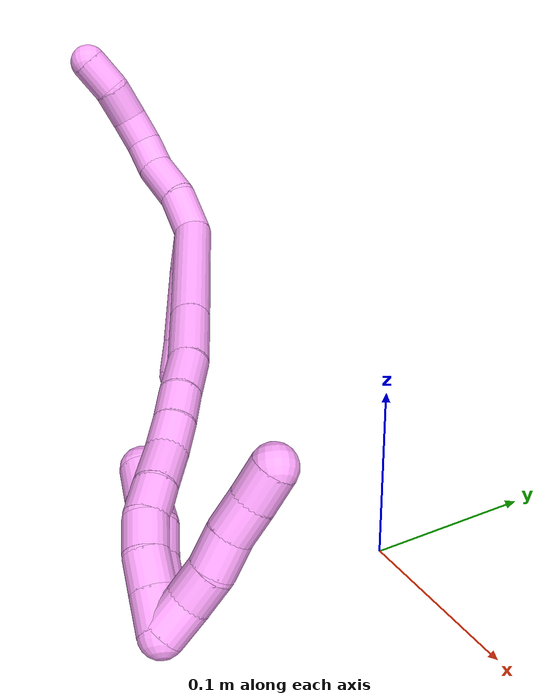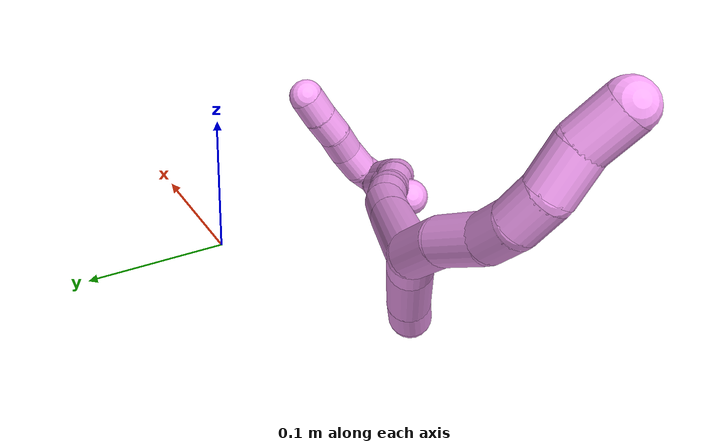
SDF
<sdf version="1.7">
 <world name="default">
  <model name="4">
   <static>0</static>
   <link name="4">
    <collision name="collision-cylinder-e_1_2_8">
     <pose>0.000959 -0.004713 0.01437 0.316935 0.063328 0.010124</pose>
     <geometry><cylinder><radius>0.0125</radius><length>0.030307</length></cylinder></geometry>
     <surface>
      <friction><ode><mu>1.16</mu><mu2>1.16</mu2><slip1>0</slip1><slip2>0</slip2></ode></friction>
      <contact><ode><kp>1e+06</kp><kd>1</kd><max_vel>0</max_vel><min_depth>0.001</min_depth></ode></contact>
     </surface>
    </collision>
    <visual name="visual-cylinder-e_1_2_8">
     <pose>0.000959 -0.004713 0.01437 0.316935 0.063328 0.010124</pose>
     <geometry><cylinder><radius>0.0125</radius><length>0.030307</length></cylinder></geometry>
     <material><ambient>1 0.65098 0.996078 1</ambient></material>
    </visual>
    <collision name="collision-cylinder-e_2_8_9">
     <pose>-0.000323 -0.016083 0.041964 0.466335 -0.150254 -0.035747</pose>
     <geometry><cylinder><radius>0.0125</radius><length>0.029948</length></cylinder></geometry>
     <surface>
      <friction><ode><mu>1.16</mu><mu2>1.16</mu2><slip1>0</slip1><slip2>0</slip2></ode></friction>
      <contact><ode><kp>1e+06</kp><kd>1</kd><max_vel>0</max_vel><min_depth>0.001</min_depth></ode></contact>
     </surface>
    </collision>
    <visual name="visual-cylinder-e_2_8_9">
     <pose>-0.000323 -0.016083 0.041964 0.466335 -0.150254 -0.035747</pose>
     <geometry><cylinder><radius>0.0125</radius><length>0.029948</length></cylinder></geometry>
     <material><ambient>1 0.65098 0.996078 1</ambient></material>
    </visual>
    <collision name="collision-cylinder-e_3_9_10">
     <pose>-0.001166 -0.02679 0.064724 0.401665 0.134226 0.027365</pose>
     <geometry><cylinder><radius>0.0125</radius><length>0.02091</length></cylinder></geometry>
     <surface>
      <friction><ode><mu>1.16</mu><mu2>1.16</mu2><slip1>0</slip1><slip2>0</slip2></ode></friction>
      <contact><ode><kp>1e+06</kp><kd>1</kd><max_vel>0</max_vel><min_depth>0.001</min_depth></ode></contact>
     </surface>
    </collision>
    <visual name="visual-cylinder-e_3_9_10">
     <pose>-0.001166 -0.02679 0.064724 0.401665 0.134226 0.027365</pose>
     <geometry><cylinder><radius>0.0125</radius><length>0.02091</length></cylinder></geometry>
     <material><ambient>1 0.65098 0.996078 1</ambient></material>
    </visual>
    <collision name="collision-cylinder-e_4_10_11">
     <pose>0.004167 -0.036567 0.08206 0.633314 0.386154 0.127957</pose>
     <geometry><cylinder><radius>0.0125</radius><length>0.020891</length></cylinder></geometry>
     <surface>
      <friction><ode><mu>1.16</mu><mu2>1.16</mu2><slip1>0</slip1><slip2>0</slip2></ode></friction>
      <contact><ode><kp>1e+06</kp><kd>1</kd><max_vel>0</max_vel><min_depth>0.001</min_depth></ode></contact>
     </surface>
    </collision>
    <visual name="visual-cylinder-e_4_10_11">
     <pose>0.004167 -0.036567 0.08206 0.633314 0.386154 0.127957</pose>
     <geometry><cylinder><radius>0.0125</radius><length>0.020891</length></cylinder></geometry>
     <material><ambient>1 0.65098 0.996078 1</ambient></material>
    </visual>
    <collision name="collision-cylinder-e_5_11_12">
     <pose>0.015392 -0.049454 0.095997 0.862197 0.658083 0.31156</pose>
     <geometry><cylinder><radius>0.0125</radius><length>0.023839</length></cylinder></geometry>
     <surface>
      <friction><ode><mu>1.16</mu><mu2>1.16</mu2><slip1>0</slip1><slip2>0</slip2></ode></friction>
      <contact><ode><kp>1e+06</kp><kd>1</kd><max_vel>0</max_vel><min_depth>0.001</min_depth></ode></contact>
     </surface>
    </collision>
    <visual name="visual-cylinder-e_5_11_12">
     <pose>0.015392 -0.049454 0.095997 0.862197 0.658083 0.31156</pose>
     <geometry><cylinder><radius>0.0125</radius><length>0.023839</length></cylinder></geometry>
     <material><ambient>1 0.65098 0.996078 1</ambient></material>
    </visual>
    <collision name="collision-cylinder-e_6_12_6">
     <pose>0.027194 -0.06521 0.109278 0.877335 0.383719 0.181763</pose>
     <geometry><cylinder><radius>0.0125</radius><length>0.024106</length></cylinder></geometry>
     <surface>
      <friction><ode><mu>1.16</mu><mu2>1.16</mu2><slip1>0</slip1><slip2>0</slip2></ode></friction>
      <contact><ode><kp>1e+06</kp><kd>1</kd><max_vel>0</max_vel><min_depth>0.001</min_depth></ode></contact>
     </surface>
    </collision>
    <visual name="visual-cylinder-e_6_12_6">
     <pose>0.027194 -0.06521 0.109278 0.877335 0.383719 0.181763</pose>
     <geometry><cylinder><radius>0.0125</radius><length>0.024106</length></cylinder></geometry>
     <material><ambient>1 0.65098 0.996078 1</ambient></material>
    </visual>
    <collision name="collision-cylinder-e_1_2_13">
     <pose>-0.003012 -0.001865 -0.014201 3.01099 -0.207237 -2.01885</pose>
     <geometry><cylinder><radius>0.0125</radius><length>0.029273</length></cylinder></geometry>
     <surface>
      <friction><ode><mu>1.16</mu><mu2>1.16</mu2><slip1>0</slip1><slip2>0</slip2></ode></friction>
      <contact><ode><kp>1e+06</kp><kd>1</kd><max_vel>0</max_vel><min_depth>0.001</min_depth></ode></contact>
     </surface>
    </collision>
    <visual name="visual-cylinder-e_1_2_13">
     <pose>-0.003012 -0.001865 -0.014201 3.01099 -0.207237 -2.01885</pose>
     <geometry><cylinder><radius>0.0125</radius><length>0.029273</length></cylinder></geometry>
     <material><ambient>1 0.65098 0.996078 1</ambient></material>
    </visual>
    <collision name="collision-cylinder-e_2_13_14">
     <pose>-0.014968 -0.005377 -0.051044 3.069 -0.375338 -2.76372</pose>
     <geometry><cylinder><radius>0.0125</radius><length>0.048801</length></cylinder></geometry>
     <surface>
      <friction><ode><mu>1.16</mu><mu2>1.16</mu2><slip1>0</slip1><slip2>0</slip2></ode></friction>
      <contact><ode><kp>1e+06</kp><kd>1</kd><max_vel>0</max_vel><min_depth>0.001</min_depth></ode></contact>
     </surface>
    </collision>
    <visual name="visual-cylinder-e_2_13_14">
     <pose>-0.014968 -0.005377 -0.051044 3.069 -0.375338 -2.76372</pose>
     <geometry><cylinder><radius>0.0125</radius><length>0.048801</length></cylinder></geometry>
     <material><ambient>1 0.65098 0.996078 1</ambient></material>
    </visual>
    <collision name="collision-cylinder-e_3_14_5">
     <pose>-0.028542 -0.008172 -0.083558 3.02585 -0.435961 -2.62993</pose>
     <geometry><cylinder><radius>0.0125</radius><length>0.021926</length></cylinder></geometry>
     <surface>
      <friction><ode><mu>1.16</mu><mu2>1.16</mu2><slip1>0</slip1><slip2>0</slip2></ode></friction>
      <contact><ode><kp>1e+06</kp><kd>1</kd><max_vel>0</max_vel><min_depth>0.001</min_depth></ode></contact>
     </surface>
    </collision>
    <visual name="visual-cylinder-e_3_14_5">
     <pose>-0.028542 -0.008172 -0.083558 3.02585 -0.435961 -2.62993</pose>
     <geometry><cylinder><radius>0.0125</radius><length>0.021926</length></cylinder></geometry>
     <material><ambient>1 0.65098 0.996078 1</ambient></material>
    </visual>
    <collision name="collision-cylinder-e_1_2_15">
     <pose>0.012375 -0.006386 -0.041032 2.9872 0.289624 2.16624</pose>
     <geometry><cylinder><radius>0.0125</radius><length>0.086661</length></cylinder></geometry>
     <surface>
      <friction><ode><mu>1.16</mu><mu2>1.16</mu2><slip1>0</slip1><slip2>0</slip2></ode></friction>
      <contact><ode><kp>1e+06</kp><kd>1</kd><max_vel>0</max_vel><min_depth>0.001</min_depth></ode></contact>
     </surface>
    </collision>
    <visual name="visual-cylinder-e_1_2_15">
     <pose>0.012375 -0.006386 -0.041032 2.9872 0.289624 2.16624</pose>
     <geometry><cylinder><radius>0.0125</radius><length>0.086661</length></cylinder></geometry>
     <material><ambient>1 0.65098 0.996078 1</ambient></material>
    </visual>
    <collision name="collision-cylinder-e_2_15_16">
     <pose>0.03092 -0.015933 -0.100809 2.97452 0.313839 2.16814</pose>
     <geometry><cylinder><radius>0.0125</radius><length>0.039974</length></cylinder></geometry>
     <surface>
      <friction><ode><mu>1.16</mu><mu2>1.16</mu2><slip1>0</slip1><slip2>0</slip2></ode></friction>
      <contact><ode><kp>1e+06</kp><kd>1</kd><max_vel>0</max_vel><min_depth>0.001</min_depth></ode></contact>
     </surface>
    </collision>
    <visual name="visual-cylinder-e_2_15_16">
     <pose>0.03092 -0.015933 -0.100809 2.97452 0.313839 2.16814</pose>
     <geometry><cylinder><radius>0.0125</radius><length>0.039974</length></cylinder></geometry>
     <material><ambient>1 0.65098 0.996078 1</ambient></material>
    </visual>
    <collision name="collision-cylinder-e_3_16_17">
     <pose>0.040603 -0.023032 -0.131626 2.82627 0.269955 1.41387</pose>
     <geometry><cylinder><radius>0.0125</radius><length>0.026347</length></cylinder></geometry>
     <surface>
      <friction><ode><mu>1.16</mu><mu2>1.16</mu2><slip1>0</slip1><slip2>0</slip2></ode></friction>
      <contact><ode><kp>1e+06</kp><kd>1</kd><max_vel>0</max_vel><min_depth>0.001</min_depth></ode></contact>
     </surface>
    </collision>
    <visual name="visual-cylinder-e_3_16_17">
     <pose>0.040603 -0.023032 -0.131626 2.82627 0.269955 1.41387</pose>
     <geometry><cylinder><radius>0.0125</radius><length>0.026347</length></cylinder></geometry>
     <material><ambient>1 0.65098 0.996078 1</ambient></material>
    </visual>
    <collision name="collision-cylinder-e_4_17_18">
     <pose>0.046103 -0.029669 -0.153622 2.87599 0.190791 1.24312</pose>
     <geometry><cylinder><radius>0.0125</radius><length>0.020953</length></cylinder></geometry>
     <surface>
      <friction><ode><mu>1.16</mu><mu2>1.16</mu2><slip1>0</slip1><slip2>0</slip2></ode></friction>
      <contact><ode><kp>1e+06</kp><kd>1</kd><max_vel>0</max_vel><min_depth>0.001</min_depth></ode></contact>
     </surface>
    </collision>
    <visual name="visual-cylinder-e_4_17_18">
     <pose>0.046103 -0.029669 -0.153622 2.87599 0.190791 1.24312</pose>
     <geometry><cylinder><radius>0.0125</radius><length>0.020953</length></cylinder></geometry>
     <material><ambient>1 0.65098 0.996078 1</ambient></material>
    </visual>
    <collision name="collision-cylinder-e_5_18_19">
     <pose>0.049275 -0.035504 -0.173346 2.83197 0.114707 0.705081</pose>
     <geometry><cylinder><radius>0.0125</radius><length>0.020713</length></cylinder></geometry>
     <surface>
      <friction><ode><mu>1.16</mu><mu2>1.16</mu2><slip1>0</slip1><slip2>0</slip2></ode></friction>
      <contact><ode><kp>1e+06</kp><kd>1</kd><max_vel>0</max_vel><min_depth>0.001</min_depth></ode></contact>
     </surface>
    </collision>
    <visual name="visual-cylinder-e_5_18_19">
     <pose>0.049275 -0.035504 -0.173346 2.83197 0.114707 0.705081</pose>
     <geometry><cylinder><radius>0.0125</radius><length>0.020713</length></cylinder></geometry>
     <material><ambient>1 0.65098 0.996078 1</ambient></material>
    </visual>
    <collision name="collision-cylinder-e_6_19_20">
     <pose>0.054 -0.042892 -0.193895 2.76483 0.297087 1.33099</pose>
     <geometry><cylinder><radius>0.0125</radius><length>0.02418</length></cylinder></geometry>
     <surface>
      <friction><ode><mu>1.16</mu><mu2>1.16</mu2><slip1>0</slip1><slip2>0</slip2></ode></friction>
      <contact><ode><kp>1e+06</kp><kd>1</kd><max_vel>0</max_vel><min_depth>0.001</min_depth></ode></contact>
     </surface>
    </collision>
    <visual name="visual-cylinder-e_6_19_20">
     <pose>0.054 -0.042892 -0.193895 2.76483 0.297087 1.33099</pose>
     <geometry><cylinder><radius>0.0125</radius><length>0.02418</length></cylinder></geometry>
     <material><ambient>1 0.65098 0.996078 1</ambient></material>
    </visual>
    <collision name="collision-cylinder-e_7_20_21">
     <pose>0.059352 -0.050463 -0.213958 2.7994 0.181359 0.968847</pose>
     <geometry><cylinder><radius>0.0125</radius><length>0.020104</length></cylinder></geometry>
     <surface>
      <friction><ode><mu>1.16</mu><mu2>1.16</mu2><slip1>0</slip1><slip2>0</slip2></ode></friction>
      <contact><ode><kp>1e+06</kp><kd>1</kd><max_vel>0</max_vel><min_depth>0.001</min_depth></ode></contact>
     </surface>
    </collision>
    <visual name="visual-cylinder-e_7_20_21">
     <pose>0.059352 -0.050463 -0.213958 2.7994 0.181359 0.968847</pose>
     <geometry><cylinder><radius>0.0125</radius><length>0.020104</length></cylinder></geometry>
     <material><ambient>1 0.65098 0.996078 1</ambient></material>
    </visual>
    <collision name="collision-cylinder-e_8_21_22">
     <pose>0.062688 -0.05437 -0.233158 3.08212 0.152642 2.39966</pose>
     <geometry><cylinder><radius>0.0125</radius><length>0.020041</length></cylinder></geometry>
     <surface>
      <friction><ode><mu>1.16</mu><mu2>1.16</mu2><slip1>0</slip1><slip2>0</slip2></ode></friction>
      <contact><ode><kp>1e+06</kp><kd>1</kd><max_vel>0</max_vel><min_depth>0.001</min_depth></ode></contact>
     </surface>
    </collision>
    <visual name="visual-cylinder-e_8_21_22">
     <pose>0.062688 -0.05437 -0.233158 3.08212 0.152642 2.39966</pose>
     <geometry><cylinder><radius>0.0125</radius><length>0.020041</length></cylinder></geometry>
     <material><ambient>1 0.65098 0.996078 1</ambient></material>
    </visual>
    <collision name="collision-cylinder-e_9_22_23">
     <pose>0.065373 -0.053734 -0.252981 -3.01904 0.115434 -1.51088</pose>
     <geometry><cylinder><radius>0.0125</radius><length>0.020157</length></cylinder></geometry>
     <surface>
      <friction><ode><mu>1.16</mu><mu2>1.16</mu2><slip1>0</slip1><slip2>0</slip2></ode></friction>
      <contact><ode><kp>1e+06</kp><kd>1</kd><max_vel>0</max_vel><min_depth>0.001</min_depth></ode></contact>
     </surface>
    </collision>
    <visual name="visual-cylinder-e_9_22_23">
     <pose>0.065373 -0.053734 -0.252981 -3.01904 0.115434 -1.51088</pose>
     <geometry><cylinder><radius>0.0125</radius><length>0.020157</length></cylinder></geometry>
     <material><ambient>1 0.65098 0.996078 1</ambient></material>
    </visual>
    <collision name="collision-cylinder-e_10_23_1">
     <pose>0.067784 -0.051226 -0.273198 -3.01724 0.120128 -1.53616</pose>
     <geometry><cylinder><radius>0.0125</radius><length>0.020872</length></cylinder></geometry>
     <surface>
      <friction><ode><mu>1.16</mu><mu2>1.16</mu2><slip1>0</slip1><slip2>0</slip2></ode></friction>
      <contact><ode><kp>1e+06</kp><kd>1</kd><max_vel>0</max_vel><min_depth>0.001</min_depth></ode></contact>
     </surface>
    </collision>
    <visual name="visual-cylinder-e_10_23_1">
     <pose>0.067784 -0.051226 -0.273198 -3.01724 0.120128 -1.53616</pose>
     <geometry><cylinder><radius>0.0125</radius><length>0.020872</length></cylinder></geometry>
     <material><ambient>1 0.65098 0.996078 1</ambient></material>
    </visual>
    <collision name="collision-cylinder-e_1_1_24">
     <pose>0.065599 -0.048853 -0.27415 -0.116086 -0.35069 0.020589</pose>
     <geometry><cylinder><radius>0.0125</radius><length>0.02</length></cylinder></geometry>
     <surface>
      <friction><ode><mu>1.16</mu><mu2>1.16</mu2><slip1>0</slip1><slip2>0</slip2></ode></friction>
      <contact><ode><kp>1e+06</kp><kd>1</kd><max_vel>0</max_vel><min_depth>0.001</min_depth></ode></contact>
     </surface>
    </collision>
    <visual name="visual-cylinder-e_1_1_24">
     <pose>0.065599 -0.048853 -0.27415 -0.116086 -0.35069 0.020589</pose>
     <geometry><cylinder><radius>0.0125</radius><length>0.02</length></cylinder></geometry>
     <material><ambient>1 0.65098 0.996078 1</ambient></material>
    </visual>
    <collision name="collision-cylinder-e_2_24_25">
     <pose>0.060703 -0.048608 -0.254966 0.085371 -0.14667 -0.006276</pose>
     <geometry><cylinder><radius>0.0125</radius><length>0.02</length></cylinder></geometry>
     <surface>
      <friction><ode><mu>1.16</mu><mu2>1.16</mu2><slip1>0</slip1><slip2>0</slip2></ode></friction>
      <contact><ode><kp>1e+06</kp><kd>1</kd><max_vel>0</max_vel><min_depth>0.001</min_depth></ode></contact>
     </surface>
    </collision>
    <visual name="visual-cylinder-e_2_24_25">
     <pose>0.060703 -0.048608 -0.254966 0.085371 -0.14667 -0.006276</pose>
     <geometry><cylinder><radius>0.0125</radius><length>0.02</length></cylinder></geometry>
     <material><ambient>1 0.65098 0.996078 1</ambient></material>
    </visual>
    <collision name="collision-cylinder-e_3_25_26">
     <pose>0.056861 -0.048392 -0.235455 -0.109387 -0.240295 0.013219</pose>
     <geometry><cylinder><radius>0.0125</radius><length>0.02</length></cylinder></geometry>
     <surface>
      <friction><ode><mu>1.16</mu><mu2>1.16</mu2><slip1>0</slip1><slip2>0</slip2></ode></friction>
      <contact><ode><kp>1e+06</kp><kd>1</kd><max_vel>0</max_vel><min_depth>0.001</min_depth></ode></contact>
     </surface>
    </collision>
    <visual name="visual-cylinder-e_3_25_26">
     <pose>0.056861 -0.048392 -0.235455 -0.109387 -0.240295 0.013219</pose>
     <geometry><cylinder><radius>0.0125</radius><length>0.02</length></cylinder></geometry>
     <material><ambient>1 0.65098 0.996078 1</ambient></material>
    </visual>
    <collision name="collision-cylinder-e_4_26_27">
     <pose>0.050417 -0.048281 -0.216712 0.104089 -0.418507 -0.022124</pose>
     <geometry><cylinder><radius>0.0125</radius><length>0.02</length></cylinder></geometry>
     <surface>
      <friction><ode><mu>1.16</mu><mu2>1.16</mu2><slip1>0</slip1><slip2>0</slip2></ode></friction>
      <contact><ode><kp>1e+06</kp><kd>1</kd><max_vel>0</max_vel><min_depth>0.001</min_depth></ode></contact>
     </surface>
    </collision>
    <visual name="visual-cylinder-e_4_26_27">
     <pose>0.050417 -0.048281 -0.216712 0.104089 -0.418507 -0.022124</pose>
     <geometry><cylinder><radius>0.0125</radius><length>0.02</length></cylinder></geometry>
     <material><ambient>1 0.65098 0.996078 1</ambient></material>
    </visual>
    <collision name="collision-cylinder-e_5_27_4">
     <pose>0.043739 -0.049906 -0.197996 0.070066 -0.264542 -0.009326</pose>
     <geometry><cylinder><radius>0.0125</radius><length>0.02</length></cylinder></geometry>
     <surface>
      <friction><ode><mu>1.16</mu><mu2>1.16</mu2><slip1>0</slip1><slip2>0</slip2></ode></friction>
      <contact><ode><kp>1e+06</kp><kd>1</kd><max_vel>0</max_vel><min_depth>0.001</min_depth></ode></contact>
     </surface>
    </collision>
    <visual name="visual-cylinder-e_5_27_4">
     <pose>0.043739 -0.049906 -0.197996 0.070066 -0.264542 -0.009326</pose>
     <geometry><cylinder><radius>0.0125</radius><length>0.02</length></cylinder></geometry>
     <material><ambient>1 0.65098 0.996078 1</ambient></material>
    </visual>
    <collision name="collision-cylinder-e_1_1_28">
     <pose>0.073934 -0.04396 -0.277135 -0.755981 0.511926 -0.207094</pose>
     <geometry><cylinder><radius>0.0125</radius><length>0.02</length></cylinder></geometry>
     <surface>
      <friction><ode><mu>1.16</mu><mu2>1.16</mu2><slip1>0</slip1><slip2>0</slip2></ode></friction>
      <contact><ode><kp>1e+06</kp><kd>1</kd><max_vel>0</max_vel><min_depth>0.001</min_depth></ode></contact>
     </surface>
    </collision>
    <visual name="visual-cylinder-e_1_1_28">
     <pose>0.073934 -0.04396 -0.277135 -0.755981 0.511926 -0.207094</pose>
     <geometry><cylinder><radius>0.0125</radius><length>0.02</length></cylinder></geometry>
     <material><ambient>1 0.65098 0.996078 1</ambient></material>
    </visual>
    <collision name="collision-cylinder-e_2_28_29">
     <pose>0.08598 -0.033447 -0.265466 -0.705017 0.796344 -0.30705</pose>
     <geometry><cylinder><radius>0.0125</radius><length>0.02</length></cylinder></geometry>
     <surface>
      <friction><ode><mu>1.16</mu><mu2>1.16</mu2><slip1>0</slip1><slip2>0</slip2></ode></friction>
      <contact><ode><kp>1e+06</kp><kd>1</kd><max_vel>0</max_vel><min_depth>0.001</min_depth></ode></contact>
     </surface>
    </collision>
    <visual name="visual-cylinder-e_2_28_29">
     <pose>0.08598 -0.033447 -0.265466 -0.705017 0.796344 -0.30705</pose>
     <geometry><cylinder><radius>0.0125</radius><length>0.02</length></cylinder></geometry>
     <material><ambient>1 0.65098 0.996078 1</ambient></material>
    </visual>
    <collision name="collision-cylinder-e_3_29_30">
     <pose>0.099386 -0.025364 -0.253196 -0.47276 0.676187 -0.168983</pose>
     <geometry><cylinder><radius>0.0125</radius><length>0.02</length></cylinder></geometry>
     <surface>
      <friction><ode><mu>1.16</mu><mu2>1.16</mu2><slip1>0</slip1><slip2>0</slip2></ode></friction>
      <contact><ode><kp>1e+06</kp><kd>1</kd><max_vel>0</max_vel><min_depth>0.001</min_depth></ode></contact>
     </surface>
    </collision>
    <visual name="visual-cylinder-e_3_29_30">
     <pose>0.099386 -0.025364 -0.253196 -0.47276 0.676187 -0.168983</pose>
     <geometry><cylinder><radius>0.0125</radius><length>0.02</length></cylinder></geometry>
     <material><ambient>1 0.65098 0.996078 1</ambient></material>
    </visual>
    <collision name="collision-cylinder-e_4_30_31">
     <pose>0.112563 -0.017435 -0.24051 -0.651341 0.764043 -0.269697</pose>
     <geometry><cylinder><radius>0.0125</radius><length>0.02</length></cylinder></geometry>
     <surface>
      <friction><ode><mu>1.16</mu><mu2>1.16</mu2><slip1>0</slip1><slip2>0</slip2></ode></friction>
      <contact><ode><kp>1e+06</kp><kd>1</kd><max_vel>0</max_vel><min_depth>0.001</min_depth></ode></contact>
     </surface>
    </collision>
    <visual name="visual-cylinder-e_4_30_31">
     <pose>0.112563 -0.017435 -0.24051 -0.651341 0.764043 -0.269697</pose>
     <geometry><cylinder><radius>0.0125</radius><length>0.02</length></cylinder></geometry>
     <material><ambient>1 0.65098 0.996078 1</ambient></material>
    </visual>
    <collision name="collision-cylinder-e_5_31_3">
     <pose>0.126823 -0.009226 -0.229162 -0.599607 0.824375 -0.268689</pose>
     <geometry><cylinder><radius>0.0125</radius><length>0.02</length></cylinder></geometry>
     <surface>
      <friction><ode><mu>1.16</mu><mu2>1.16</mu2><slip1>0</slip1><slip2>0</slip2></ode></friction>
      <contact><ode><kp>1e+06</kp><kd>1</kd><max_vel>0</max_vel><min_depth>0.001</min_depth></ode></contact>
     </surface>
    </collision>
    <visual name="visual-cylinder-e_5_31_3">
     <pose>0.126823 -0.009226 -0.229162 -0.599607 0.824375 -0.268689</pose>
     <geometry><cylinder><radius>0.0125</radius><length>0.02</length></cylinder></geometry>
     <material><ambient>1 0.65098 0.996078 1</ambient></material>
    </visual>
    <collision name="collision-sphere-3">
     <pose>0.134164 -0.005394 -0.223556 0 -0 0</pose>
     <geometry><sphere><radius>0.0125</radius></sphere></geometry>
     <surface>
      <friction><ode><mu>1.16</mu><mu2>1.16</mu2><slip1>0</slip1><slip2>0</slip2></ode></friction>
      <contact><ode><kp>1e+06</kp><kd>1</kd><max_vel>0</max_vel><min_depth>0.001</min_depth></ode></contact>
     </surface>
    </collision>
    <visual name="visual-sphere-3">
     <pose>0.134164 -0.005394 -0.223556 0 -0 0</pose>
     <geometry><sphere><radius>0.0125</radius></sphere></geometry>
     <material><ambient>1 0.65098 0.996078 1</ambient></material>
    </visual>
    <collision name="collision-sphere-31">
     <pose>0.119482 -0.013057 -0.234767 0 -0 0</pose>
     <geometry><sphere><radius>0.0125</radius></sphere></geometry>
     <surface>
      <friction><ode><mu>1.16</mu><mu2>1.16</mu2><slip1>0</slip1><slip2>0</slip2></ode></friction>
      <contact><ode><kp>1e+06</kp><kd>1</kd><max_vel>0</max_vel><min_depth>0.001</min_depth></ode></contact>
     </surface>
    </collision>
    <visual name="visual-sphere-31">
     <pose>0.119482 -0.013057 -0.234767 0 -0 0</pose>
     <geometry><sphere><radius>0.0125</radius></sphere></geometry>
     <material><ambient>1 0.65098 0.996078 1</ambient></material>
    </visual>
    <collision name="collision-sphere-30">
     <pose>0.105645 -0.021812 -0.246252 0 -0 0</pose>
     <geometry><sphere><radius>0.0125</radius></sphere></geometry>
     <surface>
      <friction><ode><mu>1.16</mu><mu2>1.16</mu2><slip1>0</slip1><slip2>0</slip2></ode></friction>
      <contact><ode><kp>1e+06</kp><kd>1</kd><max_vel>0</max_vel><min_depth>0.001</min_depth></ode></contact>
     </surface>
    </collision>
    <visual name="visual-sphere-30">
     <pose>0.105645 -0.021812 -0.246252 0 -0 0</pose>
     <geometry><sphere><radius>0.0125</radius></sphere></geometry>
     <material><ambient>1 0.65098 0.996078 1</ambient></material>
    </visual>
    <collision name="collision-sphere-29">
     <pose>0.093128 -0.028915 -0.26014 0 -0 0</pose>
     <geometry><sphere><radius>0.0125</radius></sphere></geometry>
     <surface>
      <friction><ode><mu>1.16</mu><mu2>1.16</mu2><slip1>0</slip1><slip2>0</slip2></ode></friction>
      <contact><ode><kp>1e+06</kp><kd>1</kd><max_vel>0</max_vel><min_depth>0.001</min_depth></ode></contact>
     </surface>
    </collision>
    <visual name="visual-sphere-29">
     <pose>0.093128 -0.028915 -0.26014 0 -0 0</pose>
     <geometry><sphere><radius>0.0125</radius></sphere></geometry>
     <material><ambient>1 0.65098 0.996078 1</ambient></material>
    </visual>
    <collision name="collision-sphere-28">
     <pose>0.078832 -0.037979 -0.270792 0 -0 0</pose>
     <geometry><sphere><radius>0.0125</radius></sphere></geometry>
     <surface>
      <friction><ode><mu>1.16</mu><mu2>1.16</mu2><slip1>0</slip1><slip2>0</slip2></ode></friction>
      <contact><ode><kp>1e+06</kp><kd>1</kd><max_vel>0</max_vel><min_depth>0.001</min_depth></ode></contact>
     </surface>
    </collision>
    <visual name="visual-sphere-28">
     <pose>0.078832 -0.037979 -0.270792 0 -0 0</pose>
     <geometry><sphere><radius>0.0125</radius></sphere></geometry>
     <material><ambient>1 0.65098 0.996078 1</ambient></material>
    </visual>
    <collision name="collision-sphere-4">
     <pose>0.041124 -0.050581 -0.188368 0 -0 0</pose>
     <geometry><sphere><radius>0.0125</radius></sphere></geometry>
     <surface>
      <friction><ode><mu>1.16</mu><mu2>1.16</mu2><slip1>0</slip1><slip2>0</slip2></ode></friction>
      <contact><ode><kp>1e+06</kp><kd>1</kd><max_vel>0</max_vel><min_depth>0.001</min_depth></ode></contact>
     </surface>
    </collision>
    <visual name="visual-sphere-4">
     <pose>0.041124 -0.050581 -0.188368 0 -0 0</pose>
     <geometry><sphere><radius>0.0125</radius></sphere></geometry>
     <material><ambient>1 0.65098 0.996078 1</ambient></material>
    </visual>
    <collision name="collision-sphere-27">
     <pose>0.046353 -0.04923 -0.207625 0 -0 0</pose>
     <geometry><sphere><radius>0.0125</radius></sphere></geometry>
     <surface>
      <friction><ode><mu>1.16</mu><mu2>1.16</mu2><slip1>0</slip1><slip2>0</slip2></ode></friction>
      <contact><ode><kp>1e+06</kp><kd>1</kd><max_vel>0</max_vel><min_depth>0.001</min_depth></ode></contact>
     </surface>
    </collision>
    <visual name="visual-sphere-27">
     <pose>0.046353 -0.04923 -0.207625 0 -0 0</pose>
     <geometry><sphere><radius>0.0125</radius></sphere></geometry>
     <material><ambient>1 0.65098 0.996078 1</ambient></material>
    </visual>
    <collision name="collision-sphere-26">
     <pose>0.054481 -0.047331 -0.2258 0 -0 0</pose>
     <geometry><sphere><radius>0.0125</radius></sphere></geometry>
     <surface>
      <friction><ode><mu>1.16</mu><mu2>1.16</mu2><slip1>0</slip1><slip2>0</slip2></ode></friction>
      <contact><ode><kp>1e+06</kp><kd>1</kd><max_vel>0</max_vel><min_depth>0.001</min_depth></ode></contact>
     </surface>
    </collision>
    <visual name="visual-sphere-26">
     <pose>0.054481 -0.047331 -0.2258 0 -0 0</pose>
     <geometry><sphere><radius>0.0125</radius></sphere></geometry>
     <material><ambient>1 0.65098 0.996078 1</ambient></material>
    </visual>
    <collision name="collision-sphere-25">
     <pose>0.059241 -0.049452 -0.245109 0 -0 0</pose>
     <geometry><sphere><radius>0.0125</radius></sphere></geometry>
     <surface>
      <friction><ode><mu>1.16</mu><mu2>1.16</mu2><slip1>0</slip1><slip2>0</slip2></ode></friction>
      <contact><ode><kp>1e+06</kp><kd>1</kd><max_vel>0</max_vel><min_depth>0.001</min_depth></ode></contact>
     </surface>
    </collision>
    <visual name="visual-sphere-25">
     <pose>0.059241 -0.049452 -0.245109 0 -0 0</pose>
     <geometry><sphere><radius>0.0125</radius></sphere></geometry>
     <material><ambient>1 0.65098 0.996078 1</ambient></material>
    </visual>
    <collision name="collision-sphere-24">
     <pose>0.062164 -0.047765 -0.264822 0 -0 0</pose>
     <geometry><sphere><radius>0.0125</radius></sphere></geometry>
     <surface>
      <friction><ode><mu>1.16</mu><mu2>1.16</mu2><slip1>0</slip1><slip2>0</slip2></ode></friction>
      <contact><ode><kp>1e+06</kp><kd>1</kd><max_vel>0</max_vel><min_depth>0.001</min_depth></ode></contact>
     </surface>
    </collision>
    <visual name="visual-sphere-24">
     <pose>0.062164 -0.047765 -0.264822 0 -0 0</pose>
     <geometry><sphere><radius>0.0125</radius></sphere></geometry>
     <material><ambient>1 0.65098 0.996078 1</ambient></material>
    </visual>
    <collision name="collision-sphere-1">
     <pose>0.069035 -0.04994 -0.283479 0 -0 0</pose>
     <geometry><sphere><radius>0.0125</radius></sphere></geometry>
     <surface>
      <friction><ode><mu>1.16</mu><mu2>1.16</mu2><slip1>0</slip1><slip2>0</slip2></ode></friction>
      <contact><ode><kp>1e+06</kp><kd>1</kd><max_vel>0</max_vel><min_depth>0.001</min_depth></ode></contact>
     </surface>
    </collision>
    <visual name="visual-sphere-1">
     <pose>0.069035 -0.04994 -0.283479 0 -0 0</pose>
     <geometry><sphere><radius>0.0125</radius></sphere></geometry>
     <material><ambient>1 0.65098 0.996078 1</ambient></material>
    </visual>
    <collision name="collision-sphere-23">
     <pose>0.066534 -0.052511 -0.262917 0 -0 0</pose>
     <geometry><sphere><radius>0.0125</radius></sphere></geometry>
     <surface>
      <friction><ode><mu>1.16</mu><mu2>1.16</mu2><slip1>0</slip1><slip2>0</slip2></ode></friction>
      <contact><ode><kp>1e+06</kp><kd>1</kd><max_vel>0</max_vel><min_depth>0.001</min_depth></ode></contact>
     </surface>
    </collision>
    <visual name="visual-sphere-23">
     <pose>0.066534 -0.052511 -0.262917 0 -0 0</pose>
     <geometry><sphere><radius>0.0125</radius></sphere></geometry>
     <material><ambient>1 0.65098 0.996078 1</ambient></material>
    </visual>
    <collision name="collision-sphere-22">
     <pose>0.064212 -0.054958 -0.243045 0 -0 0</pose>
     <geometry><sphere><radius>0.0125</radius></sphere></geometry>
     <surface>
      <friction><ode><mu>1.16</mu><mu2>1.16</mu2><slip1>0</slip1><slip2>0</slip2></ode></friction>
      <contact><ode><kp>1e+06</kp><kd>1</kd><max_vel>0</max_vel><min_depth>0.001</min_depth></ode></contact>
     </surface>
    </collision>
    <visual name="visual-sphere-22">
     <pose>0.064212 -0.054958 -0.243045 0 -0 0</pose>
     <geometry><sphere><radius>0.0125</radius></sphere></geometry>
     <material><ambient>1 0.65098 0.996078 1</ambient></material>
    </visual>
    <collision name="collision-sphere-21">
     <pose>0.061165 -0.053781 -0.223272 0 -0 0</pose>
     <geometry><sphere><radius>0.0125</radius></sphere></geometry>
     <surface>
      <friction><ode><mu>1.16</mu><mu2>1.16</mu2><slip1>0</slip1><slip2>0</slip2></ode></friction>
      <contact><ode><kp>1e+06</kp><kd>1</kd><max_vel>0</max_vel><min_depth>0.001</min_depth></ode></contact>
     </surface>
    </collision>
    <visual name="visual-sphere-21">
     <pose>0.061165 -0.053781 -0.223272 0 -0 0</pose>
     <geometry><sphere><radius>0.0125</radius></sphere></geometry>
     <material><ambient>1 0.65098 0.996078 1</ambient></material>
    </visual>
    <collision name="collision-sphere-12">
     <pose>0.022681 -0.056614 0.102134 0 -0 0</pose>
     <geometry><sphere><radius>0.0125</radius></sphere></geometry>
     <surface>
      <friction><ode><mu>1.16</mu><mu2>1.16</mu2><slip1>0</slip1><slip2>0</slip2></ode></friction>
      <contact><ode><kp>1e+06</kp><kd>1</kd><max_vel>0</max_vel><min_depth>0.001</min_depth></ode></contact>
     </surface>
    </collision>
    <visual name="visual-sphere-12">
     <pose>0.022681 -0.056614 0.102134 0 -0 0</pose>
     <geometry><sphere><radius>0.0125</radius></sphere></geometry>
     <material><ambient>1 0.65098 0.996078 1</ambient></material>
    </visual>
    <collision name="collision-sphere-11">
     <pose>0.008102 -0.042294 0.08986 0 -0 0</pose>
     <geometry><sphere><radius>0.0125</radius></sphere></geometry>
     <surface>
      <friction><ode><mu>1.16</mu><mu2>1.16</mu2><slip1>0</slip1><slip2>0</slip2></ode></friction>
      <contact><ode><kp>1e+06</kp><kd>1</kd><max_vel>0</max_vel><min_depth>0.001</min_depth></ode></contact>
     </surface>
    </collision>
    <visual name="visual-sphere-11">
     <pose>0.008102 -0.042294 0.08986 0 -0 0</pose>
     <geometry><sphere><radius>0.0125</radius></sphere></geometry>
     <material><ambient>1 0.65098 0.996078 1</ambient></material>
    </visual>
    <collision name="collision-sphere-10">
     <pose>0.000233 -0.030841 0.074261 0 -0 0</pose>
     <geometry><sphere><radius>0.0125</radius></sphere></geometry>
     <surface>
      <friction><ode><mu>1.16</mu><mu2>1.16</mu2><slip1>0</slip1><slip2>0</slip2></ode></friction>
      <contact><ode><kp>1e+06</kp><kd>1</kd><max_vel>0</max_vel><min_depth>0.001</min_depth></ode></contact>
     </surface>
    </collision>
    <visual name="visual-sphere-10">
     <pose>0.000233 -0.030841 0.074261 0 -0 0</pose>
     <geometry><sphere><radius>0.0125</radius></sphere></geometry>
     <material><ambient>1 0.65098 0.996078 1</ambient></material>
    </visual>
    <collision name="collision-sphere-9">
     <pose>-0.002565 -0.02274 0.055188 0 -0 0</pose>
     <geometry><sphere><radius>0.0125</radius></sphere></geometry>
     <surface>
      <friction><ode><mu>1.16</mu><mu2>1.16</mu2><slip1>0</slip1><slip2>0</slip2></ode></friction>
      <contact><ode><kp>1e+06</kp><kd>1</kd><max_vel>0</max_vel><min_depth>0.001</min_depth></ode></contact>
     </surface>
    </collision>
    <visual name="visual-sphere-9">
     <pose>-0.002565 -0.02274 0.055188 0 -0 0</pose>
     <geometry><sphere><radius>0.0125</radius></sphere></geometry>
     <material><ambient>1 0.65098 0.996078 1</ambient></material>
    </visual>
    <collision name="collision-sphere-2">
     <geometry><sphere><radius>0.0125</radius></sphere></geometry>
     <surface>
      <friction><ode><mu>1.16</mu><mu2>1.16</mu2><slip1>0</slip1><slip2>0</slip2></ode></friction>
      <contact><ode><kp>1e+06</kp><kd>1</kd><max_vel>0</max_vel><min_depth>0.001</min_depth></ode></contact>
     </surface>
    </collision>
    <visual name="visual-sphere-2">
     <geometry><sphere><radius>0.0125</radius></sphere></geometry>
     <material><ambient>1 0.65098 0.996078 1</ambient></material>
    </visual>
    <collision name="collision-sphere-19">
     <pose>0.05046 -0.038639 -0.183145 0 -0 0</pose>
     <geometry><sphere><radius>0.0125</radius></sphere></geometry>
     <surface>
      <friction><ode><mu>1.16</mu><mu2>1.16</mu2><slip1>0</slip1><slip2>0</slip2></ode></friction>
      <contact><ode><kp>1e+06</kp><kd>1</kd><max_vel>0</max_vel><min_depth>0.001</min_depth></ode></contact>
     </surface>
    </collision>
    <visual name="visual-sphere-19">
     <pose>0.05046 -0.038639 -0.183145 0 -0 0</pose>
     <geometry><sphere><radius>0.0125</radius></sphere></geometry>
     <material><ambient>1 0.65098 0.996078 1</ambient></material>
    </visual>
    <collision name="collision-sphere-8">
     <pose>0.001918 -0.009426 0.02874 0 -0 0</pose>
     <geometry><sphere><radius>0.0125</radius></sphere></geometry>
     <surface>
      <friction><ode><mu>1.16</mu><mu2>1.16</mu2><slip1>0</slip1><slip2>0</slip2></ode></friction>
      <contact><ode><kp>1e+06</kp><kd>1</kd><max_vel>0</max_vel><min_depth>0.001</min_depth></ode></contact>
     </surface>
    </collision>
    <visual name="visual-sphere-8">
     <pose>0.001918 -0.009426 0.02874 0 -0 0</pose>
     <geometry><sphere><radius>0.0125</radius></sphere></geometry>
     <material><ambient>1 0.65098 0.996078 1</ambient></material>
    </visual>
    <collision name="collision-sphere-6">
     <pose>0.031706 -0.073805 0.116422 0 -0 0</pose>
     <geometry><sphere><radius>0.0125</radius></sphere></geometry>
     <surface>
      <friction><ode><mu>1.16</mu><mu2>1.16</mu2><slip1>0</slip1><slip2>0</slip2></ode></friction>
      <contact><ode><kp>1e+06</kp><kd>1</kd><max_vel>0</max_vel><min_depth>0.001</min_depth></ode></contact>
     </surface>
    </collision>
    <visual name="visual-sphere-6">
     <pose>0.031706 -0.073805 0.116422 0 -0 0</pose>
     <geometry><sphere><radius>0.0125</radius></sphere></geometry>
     <material><ambient>1 0.65098 0.996078 1</ambient></material>
    </visual>
    <collision name="collision-sphere-13">
     <pose>-0.006023 -0.003731 -0.028403 0 -0 0</pose>
     <geometry><sphere><radius>0.0125</radius></sphere></geometry>
     <surface>
      <friction><ode><mu>1.16</mu><mu2>1.16</mu2><slip1>0</slip1><slip2>0</slip2></ode></friction>
      <contact><ode><kp>1e+06</kp><kd>1</kd><max_vel>0</max_vel><min_depth>0.001</min_depth></ode></contact>
     </surface>
    </collision>
    <visual name="visual-sphere-13">
     <pose>-0.006023 -0.003731 -0.028403 0 -0 0</pose>
     <geometry><sphere><radius>0.0125</radius></sphere></geometry>
     <material><ambient>1 0.65098 0.996078 1</ambient></material>
    </visual>
    <collision name="collision-sphere-14">
     <pose>-0.023913 -0.007024 -0.073686 0 -0 0</pose>
     <geometry><sphere><radius>0.0125</radius></sphere></geometry>
     <surface>
      <friction><ode><mu>1.16</mu><mu2>1.16</mu2><slip1>0</slip1><slip2>0</slip2></ode></friction>
      <contact><ode><kp>1e+06</kp><kd>1</kd><max_vel>0</max_vel><min_depth>0.001</min_depth></ode></contact>
     </surface>
    </collision>
    <visual name="visual-sphere-14">
     <pose>-0.023913 -0.007024 -0.073686 0 -0 0</pose>
     <geometry><sphere><radius>0.0125</radius></sphere></geometry>
     <material><ambient>1 0.65098 0.996078 1</ambient></material>
    </visual>
    <collision name="collision-sphere-5">
     <pose>-0.033172 -0.009319 -0.093429 0 -0 0</pose>
     <geometry><sphere><radius>0.0125</radius></sphere></geometry>
     <surface>
      <friction><ode><mu>1.16</mu><mu2>1.16</mu2><slip1>0</slip1><slip2>0</slip2></ode></friction>
      <contact><ode><kp>1e+06</kp><kd>1</kd><max_vel>0</max_vel><min_depth>0.001</min_depth></ode></contact>
     </surface>
    </collision>
    <visual name="visual-sphere-5">
     <pose>-0.033172 -0.009319 -0.093429 0 -0 0</pose>
     <geometry><sphere><radius>0.0125</radius></sphere></geometry>
     <material><ambient>1 0.65098 0.996078 1</ambient></material>
    </visual>
    <collision name="collision-sphere-15">
     <pose>0.02475 -0.012772 -0.082063 0 -0 0</pose>
     <geometry><sphere><radius>0.0125</radius></sphere></geometry>
     <surface>
      <friction><ode><mu>1.16</mu><mu2>1.16</mu2><slip1>0</slip1><slip2>0</slip2></ode></friction>
      <contact><ode><kp>1e+06</kp><kd>1</kd><max_vel>0</max_vel><min_depth>0.001</min_depth></ode></contact>
     </surface>
    </collision>
    <visual name="visual-sphere-15">
     <pose>0.02475 -0.012772 -0.082063 0 -0 0</pose>
     <geometry><sphere><radius>0.0125</radius></sphere></geometry>
     <material><ambient>1 0.65098 0.996078 1</ambient></material>
    </visual>
    <collision name="collision-sphere-16">
     <pose>0.03709 -0.019094 -0.119555 0 -0 0</pose>
     <geometry><sphere><radius>0.0125</radius></sphere></geometry>
     <surface>
      <friction><ode><mu>1.16</mu><mu2>1.16</mu2><slip1>0</slip1><slip2>0</slip2></ode></friction>
      <contact><ode><kp>1e+06</kp><kd>1</kd><max_vel>0</max_vel><min_depth>0.001</min_depth></ode></contact>
     </surface>
    </collision>
    <visual name="visual-sphere-16">
     <pose>0.03709 -0.019094 -0.119555 0 -0 0</pose>
     <geometry><sphere><radius>0.0125</radius></sphere></geometry>
     <material><ambient>1 0.65098 0.996078 1</ambient></material>
    </visual>
    <collision name="collision-sphere-17">
     <pose>0.044116 -0.026969 -0.143696 0 -0 0</pose>
     <geometry><sphere><radius>0.0125</radius></sphere></geometry>
     <surface>
      <friction><ode><mu>1.16</mu><mu2>1.16</mu2><slip1>0</slip1><slip2>0</slip2></ode></friction>
      <contact><ode><kp>1e+06</kp><kd>1</kd><max_vel>0</max_vel><min_depth>0.001</min_depth></ode></contact>
     </surface>
    </collision>
    <visual name="visual-sphere-17">
     <pose>0.044116 -0.026969 -0.143696 0 -0 0</pose>
     <geometry><sphere><radius>0.0125</radius></sphere></geometry>
     <material><ambient>1 0.65098 0.996078 1</ambient></material>
    </visual>
    <collision name="collision-sphere-18">
     <pose>0.04809 -0.032369 -0.163547 0 -0 0</pose>
     <geometry><sphere><radius>0.0125</radius></sphere></geometry>
     <surface>
      <friction><ode><mu>1.16</mu><mu2>1.16</mu2><slip1>0</slip1><slip2>0</slip2></ode></friction>
      <contact><ode><kp>1e+06</kp><kd>1</kd><max_vel>0</max_vel><min_depth>0.001</min_depth></ode></contact>
     </surface>
    </collision>
    <visual name="visual-sphere-18">
     <pose>0.04809 -0.032369 -0.163547 0 -0 0</pose>
     <geometry><sphere><radius>0.0125</radius></sphere></geometry>
     <material><ambient>1 0.65098 0.996078 1</ambient></material>
    </visual>
    <collision name="collision-sphere-20">
     <pose>0.057539 -0.047146 -0.204644 0 -0 0</pose>
     <geometry><sphere><radius>0.0125</radius></sphere></geometry>
     <surface>
      <friction><ode><mu>1.16</mu><mu2>1.16</mu2><slip1>0</slip1><slip2>0</slip2></ode></friction>
      <contact><ode><kp>1e+06</kp><kd>1</kd><max_vel>0</max_vel><min_depth>0.001</min_depth></ode></contact>
     </surface>
    </collision>
    <visual name="visual-sphere-20">
     <pose>0.057539 -0.047146 -0.204644 0 -0 0</pose>
     <geometry><sphere><radius>0.0125</radius></sphere></geometry>
     <material><ambient>1 0.65098 0.996078 1</ambient></material>
    </visual>
    <inertial>
     <pose>0.036044 -0.02815 -0.115037 0 -0 0</pose>
     <mass>0.75</mass>
     <inertia>
      <ixx>3.8e-05</ixx>
      <ixy>0</ixy>
      <ixz>0</ixz>
      <iyy>0.000118</iyy>
      <iyz>0</iyz>
      <izz>-1.2e-05</izz>
     </inertia>
    </inertial>
   </link>
   <pose>-0.224585 -0.007286 0.125107 -0.260197 -0.88115 -0.043</pose>
  </model>
 </world>
</sdf>
